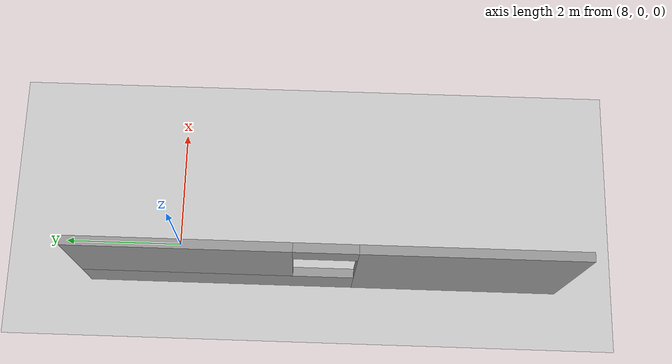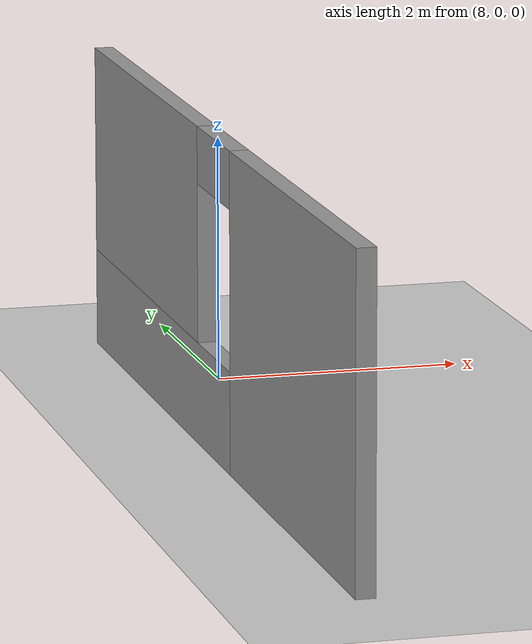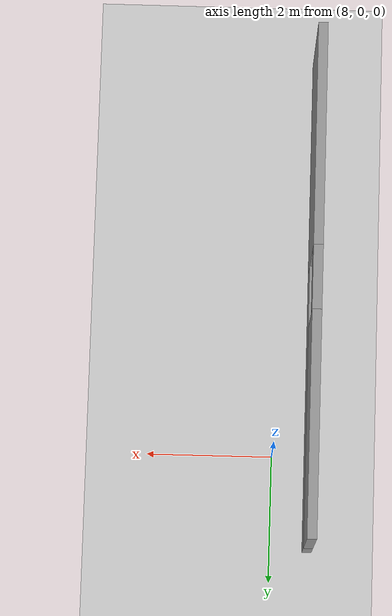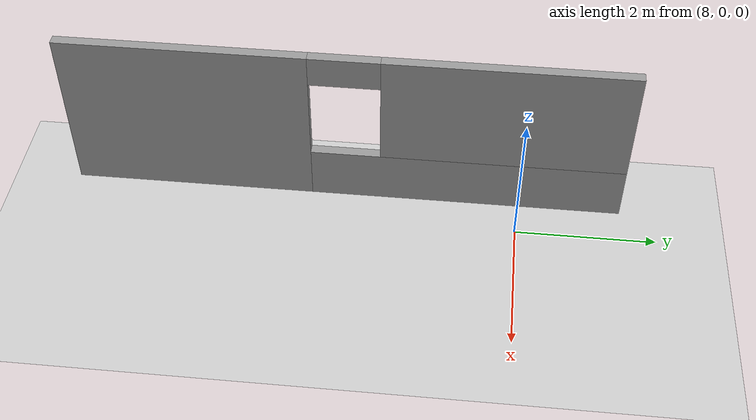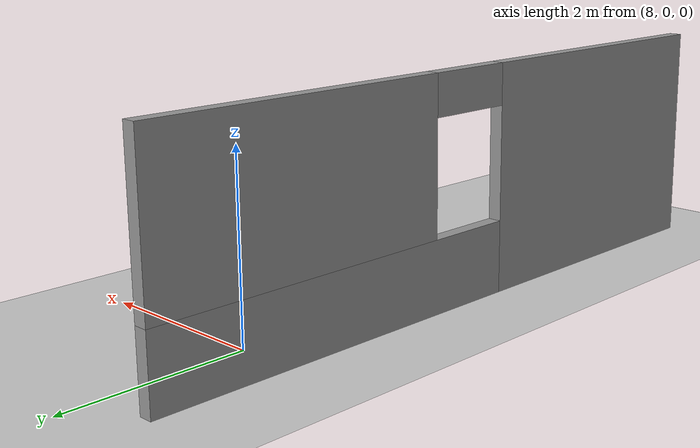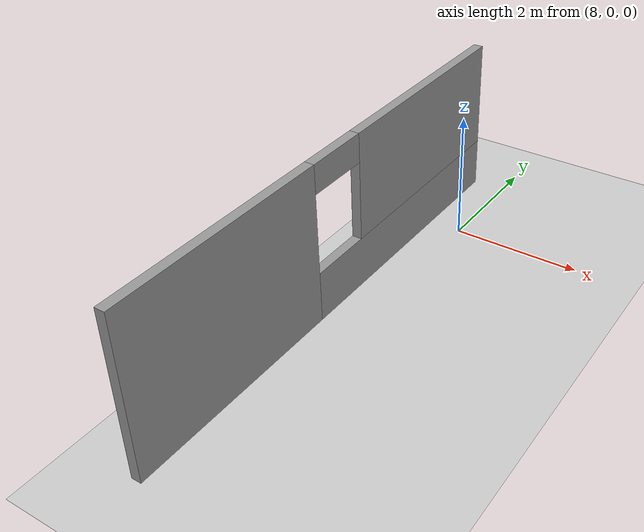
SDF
<sdf version="1.7">
 <world name="default">
  <model name="ground_plane">
   <static>1</static>
   <link name="link">
    <collision name="collision">
     <geometry><plane><normal>0 0 1</normal><size>100 100</size></plane></geometry>
     <surface>
      <contact><collide_bitmask>65535</collide_bitmask></contact>
      <friction><ode><mu>100</mu><mu2>50</mu2></ode></friction>
     </surface>
    </collision>
    <visual name="visual">
     <cast_shadows>0</cast_shadows>
     <geometry><plane><normal>0 0 1</normal><size>100 100</size></plane></geometry>
     <material>
      <script><uri>file://media/materials/scripts/gazebo.material</uri><name>Gazebo/Grey</name></script>
     </material>
    </visual>
   </link>
  </model>
  <model name="my_building_p4">
   <link name="Wall_39">
    <pose>7.425 -5.45992 0 0 -0 1.5708</pose>
    <visual name="Wall_39_Visual_3">
     <pose>0.00913 0 2.275 0 -0 0</pose>
     <geometry><box><size>1 0.15 0.45</size></box></geometry>
     <material>
      <script><uri>file://media/materials/scripts/gazebo.material</uri><name>Gazebo/Grey</name></script>
      <ambient>1 1 1 1</ambient>
      <shader type="pixel"/>
     </material>
     <meta><layer>0</layer></meta>
    </visual>
    <visual name="Wall_39_Visual_2">
     <pose>2.25456 0 1.65 0 -0 0</pose>
     <geometry><box><size>3.49087 0.15 1.7</size></box></geometry>
     <material>
      <script><uri>file://media/materials/scripts/gazebo.material</uri><name>Gazebo/Grey</name></script>
      <ambient>1 1 1 1</ambient>
      <shader type="pixel"/>
     </material>
     <meta><layer>0</layer></meta>
    </visual>
    <visual name="Wall_39_Visual_0">
     <pose>-2.24544 0 1.25 0 -0 0</pose>
     <geometry><box><size>3.50913 0.15 2.5</size></box></geometry>
     <material>
      <script><uri>file://media/materials/scripts/gazebo.material</uri><name>Gazebo/Grey</name></script>
      <ambient>1 1 1 1</ambient>
      <shader type="pixel"/>
     </material>
     <meta><layer>0</layer></meta>
    </visual>
    <visual name="Wall_39_Visual_1">
     <pose>1.75456 0 0.4 0 -0 0</pose>
     <geometry><box><size>4.49087 0.15 0.8</size></box></geometry>
     <material>
      <script><uri>file://media/materials/scripts/gazebo.material</uri><name>Gazebo/Grey</name></script>
      <ambient>1 1 1 1</ambient>
      <shader type="pixel"/>
     </material>
     <meta><layer>0</layer></meta>
    </visual>
    <collision name="Wall_39_Collision_1">
     <pose>1.75456 0 0.4 0 -0 0</pose>
     <geometry><box><size>4.49087 0.15 0.8</size></box></geometry>
     <surface>
      <friction>
       <ode><mu>1</mu><mu2>1</mu2><fdir1>0 0 0</fdir1><slip1>0</slip1><slip2>0</slip2></ode>
       <torsional>
        <coefficient>1</coefficient>
        <patch_radius>0</patch_radius>
        <surface_radius>0</surface_radius>
        <use_patch_radius>1</use_patch_radius>
        <ode><slip>0</slip></ode>
       </torsional>
      </friction>
      <bounce><restitution_coefficient>0</restitution_coefficient><threshold>1e+06</threshold></bounce>
      <contact>
       <collide_without_contact>0</collide_without_contact>
       <collide_without_contact_bitmask>1</collide_without_contact_bitmask>
       <collide_bitmask>1</collide_bitmask>
       <ode>
        <soft_cfm>0</soft_cfm>
        <soft_erp>0.2</soft_erp>
        <kp>1e+13</kp>
        <kd>1</kd>
        <max_vel>0.01</max_vel>
        <min_depth>0</min_depth>
       </ode>
       <bullet>
        <split_impulse>1</split_impulse>
        <split_impulse_penetration_threshold>-0.01</split_impulse_penetration_threshold>
        <soft_cfm>0</soft_cfm>
        <soft_erp>0.2</soft_erp>
        <kp>1e+13</kp>
        <kd>1</kd>
       </bullet>
      </contact>
     </surface>
    </collision>
    <collision name="Wall_39_Collision_0">
     <pose>-2.24544 0 1.25 0 -0 0</pose>
     <geometry><box><size>3.50913 0.15 2.5</size></box></geometry>
     <surface>
      <friction>
       <ode><mu>1</mu><mu2>1</mu2><fdir1>0 0 0</fdir1><slip1>0</slip1><slip2>0</slip2></ode>
       <torsional>
        <coefficient>1</coefficient>
        <patch_radius>0</patch_radius>
        <surface_radius>0</surface_radius>
        <use_patch_radius>1</use_patch_radius>
        <ode><slip>0</slip></ode>
       </torsional>
      </friction>
      <bounce><restitution_coefficient>0</restitution_coefficient><threshold>1e+06</threshold></bounce>
      <contact>
       <collide_without_contact>0</collide_without_contact>
       <collide_without_contact_bitmask>1</collide_without_contact_bitmask>
       <collide_bitmask>1</collide_bitmask>
       <ode>
        <soft_cfm>0</soft_cfm>
        <soft_erp>0.2</soft_erp>
        <kp>1e+13</kp>
        <kd>1</kd>
        <max_vel>0.01</max_vel>
        <min_depth>0</min_depth>
       </ode>
       <bullet>
        <split_impulse>1</split_impulse>
        <split_impulse_penetration_threshold>-0.01</split_impulse_penetration_threshold>
        <soft_cfm>0</soft_cfm>
        <soft_erp>0.2</soft_erp>
        <kp>1e+13</kp>
        <kd>1</kd>
       </bullet>
      </contact>
     </surface>
    </collision>
    <collision name="Wall_39_Collision_3">
     <pose>0.00913 0 2.275 0 -0 0</pose>
     <geometry><box><size>1 0.15 0.45</size></box></geometry>
     <surface>
      <friction>
       <ode><mu>1</mu><mu2>1</mu2><fdir1>0 0 0</fdir1><slip1>0</slip1><slip2>0</slip2></ode>
       <torsional>
        <coefficient>1</coefficient>
        <patch_radius>0</patch_radius>
        <surface_radius>0</surface_radius>
        <use_patch_radius>1</use_patch_radius>
        <ode><slip>0</slip></ode>
       </torsional>
      </friction>
      <bounce><restitution_coefficient>0</restitution_coefficient><threshold>1e+06</threshold></bounce>
      <contact>
       <collide_without_contact>0</collide_without_contact>
       <collide_without_contact_bitmask>1</collide_without_contact_bitmask>
       <collide_bitmask>1</collide_bitmask>
       <ode>
        <soft_cfm>0</soft_cfm>
        <soft_erp>0.2</soft_erp>
        <kp>1e+13</kp>
        <kd>1</kd>
        <max_vel>0.01</max_vel>
        <min_depth>0</min_depth>
       </ode>
       <bullet>
        <split_impulse>1</split_impulse>
        <split_impulse_penetration_threshold>-0.01</split_impulse_penetration_threshold>
        <soft_cfm>0</soft_cfm>
        <soft_erp>0.2</soft_erp>
        <kp>1e+13</kp>
        <kd>1</kd>
       </bullet>
      </contact>
     </surface>
    </collision>
    <collision name="Wall_39_Collision_2">
     <pose>2.25456 0 1.65 0 -0 0</pose>
     <geometry><box><size>3.49087 0.15 1.7</size></box></geometry>
     <surface>
      <friction>
       <ode><mu>1</mu><mu2>1</mu2><fdir1>0 0 0</fdir1><slip1>0</slip1><slip2>0</slip2></ode>
       <torsional>
        <coefficient>1</coefficient>
        <patch_radius>0</patch_radius>
        <surface_radius>0</surface_radius>
        <use_patch_radius>1</use_patch_radius>
        <ode><slip>0</slip></ode>
       </torsional>
      </friction>
      <bounce><restitution_coefficient>0</restitution_coefficient><threshold>1e+06</threshold></bounce>
      <contact>
       <collide_without_contact>0</collide_without_contact>
       <collide_without_contact_bitmask>1</collide_without_contact_bitmask>
       <collide_bitmask>1</collide_bitmask>
       <ode>
        <soft_cfm>0</soft_cfm>
        <soft_erp>0.2</soft_erp>
        <kp>1e+13</kp>
        <kd>1</kd>
        <max_vel>0.01</max_vel>
        <min_depth>0</min_depth>
       </ode>
       <bullet>
        <split_impulse>1</split_impulse>
        <split_impulse_penetration_threshold>-0.01</split_impulse_penetration_threshold>
        <soft_cfm>0</soft_cfm>
        <soft_erp>0.2</soft_erp>
        <kp>1e+13</kp>
        <kd>1</kd>
       </bullet>
      </contact>
     </surface>
    </collision>
   </link>
   <static>1</static>
   <pose>-0.017657 2.964 0 0 -0 0</pose>
  </model>
 </world>
</sdf>
